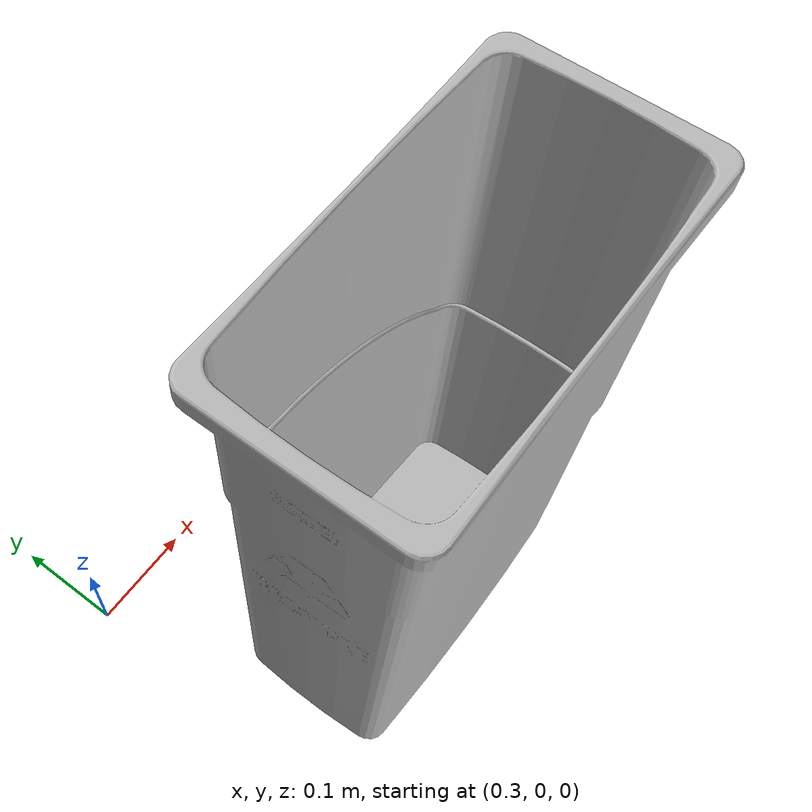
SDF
<?xml version="1.0" ?>
<sdf version='1.5'>
  <model name='recycle_bin'>
    <static>true</static>
      <link name='recycle_bin'>
        <pose frame=''>0.5 -.2 0 1.57079 0 0</pose>
         <collision name='recycle_bin'>
          <geometry>
            <mesh>
              <uri>package://RoboticRecycling/models/waste_bins/OBJ/recycle_bin/Recycle Bin.obj</uri>
            </mesh>
          </geometry>
        </collision>
        <visual name='recycle_bin'>
          <geometry>
            <mesh>
              <scale>.017 .017 .017</scale>
              <uri>package://RoboticRecycling/models/waste_bins/OBJ/recycle_bin/Recycle Bin.obj</uri>
            </mesh>
          </geometry>
        </visual>
      </link>
  </model>
</sdf>
